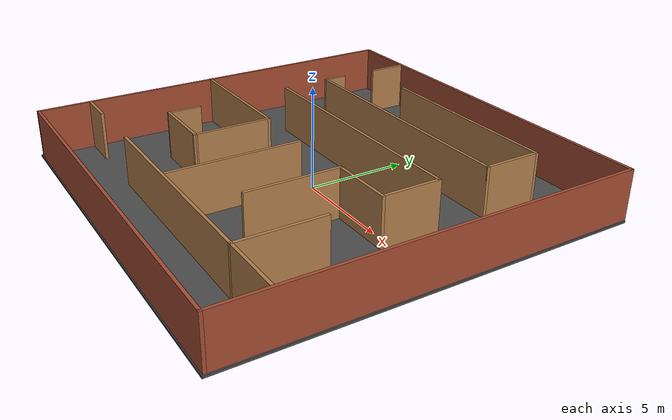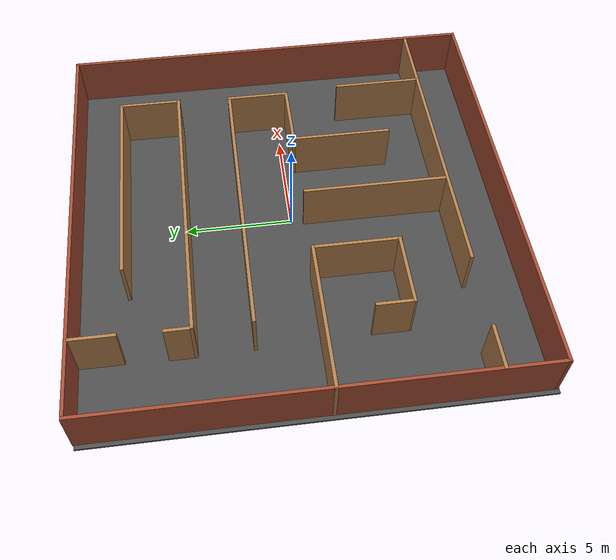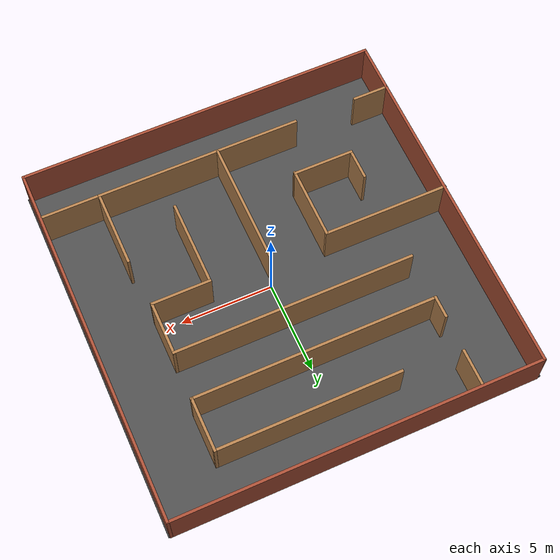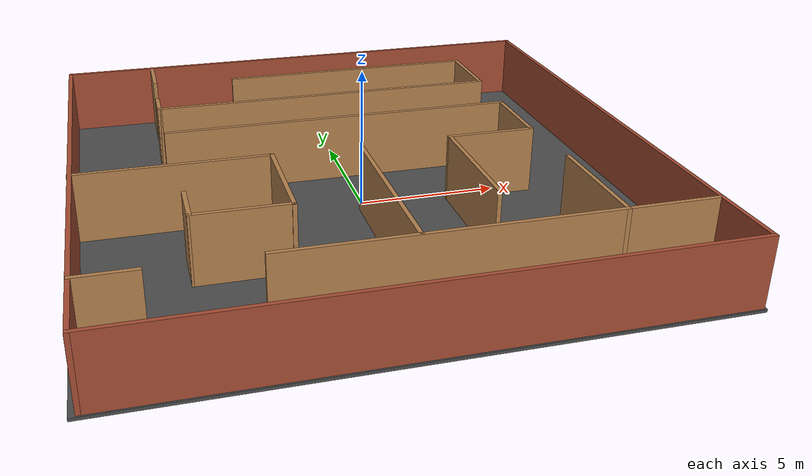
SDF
<sdf version="1.7">
 <world name="default">
  <light name="sun" type="directional">
   <pose>0 0 10 0 -0 0</pose>
   <diffuse>0.8 0.8 0.8 1</diffuse>
   <specular>0.2 0.2 0.2 1</specular>
   <attenuation>
    <range>1000</range>
    <constant>0.9</constant>
    <linear>0.01</linear>
    <quadratic>0.001</quadratic>
   </attenuation>
   <direction>-0.5 0.1 -0.9</direction>
   <spot><inner_angle>0</inner_angle><outer_angle>0</outer_angle><falloff>0</falloff></spot>
  </light>
  <gravity>0 0 -9.8</gravity>
  <magnetic_field>6e-06 2.3e-05 -4.2e-05</magnetic_field>
  <atmosphere type="adiabatic"/>
  <physics type="ode">
   <max_step_size>0.001</max_step_size>
   <real_time_factor>1</real_time_factor>
   <real_time_update_rate>1000</real_time_update_rate>
  </physics>
  <scene><ambient>0.4 0.4 0.4 1</ambient><background>0.7 0.7 0.7 1</background><shadows>1</shadows></scene>
  <spherical_coordinates>
   <surface_model>EARTH_WGS84</surface_model>
   <latitude_deg>0</latitude_deg>
   <longitude_deg>0</longitude_deg>
   <elevation>0</elevation>
   <heading_deg>0</heading_deg>
  </spherical_coordinates>
  <model name="Labyrinth_Arena">
   <pose>-0.192558 0.045 0 0 -0 0</pose>
   <link name="Wall_15">
    <collision name="Wall_15_Collision">
     <geometry><box><size>2 0.15 2.5</size></box></geometry>
     <pose>0 0 1.25 0 -0 0</pose>
    </collision>
    <visual name="Wall_15_Visual">
     <pose>0 0 1.25 0 -0 0</pose>
     <geometry><box><size>2 0.15 2.5</size></box></geometry>
     <material>
      <script><uri>file://media/materials/scripts/gazebo.material</uri><name>Gazebo/Wood</name></script>
      <ambient>1 1 1 1</ambient>
     </material>
     <meta><layer>0</layer></meta>
    </visual>
    <pose>-6.44044 8.883 0 0 -0 -1.5708</pose>
   </link>
   <link name="Wall_17">
    <collision name="Wall_17_Collision">
     <geometry><box><size>1.25 0.15 2.5</size></box></geometry>
     <pose>0 0 1.25 0 -0 0</pose>
    </collision>
    <visual name="Wall_17_Visual">
     <pose>0 0 1.25 0 -0 0</pose>
     <geometry><box><size>1.25 0.15 2.5</size></box></geometry>
     <material>
      <script><uri>file://media/materials/scripts/gazebo.material</uri><name>Gazebo/Wood</name></script>
      <ambient>1 1 1 1</ambient>
     </material>
     <meta><layer>0</layer></meta>
    </visual>
    <pose>-6.49444 5.406 0 0 -0 -1.5708</pose>
   </link>
   <link name="Wall_18">
    <collision name="Wall_18_Collision">
     <geometry><box><size>13.1616 0.15 2.5</size></box></geometry>
     <pose>0 0 1.25 0 -0 0</pose>
    </collision>
    <visual name="Wall_18_Visual">
     <pose>0 0 1.25 0 -0 0</pose>
     <geometry><box><size>13.1616 0.15 2.5</size></box></geometry>
     <material>
      <script><uri>file://media/materials/scripts/gazebo.material</uri><name>Gazebo/Wood</name></script>
      <ambient>1 1 1 1</ambient>
     </material>
     <meta><layer>0</layer></meta>
    </visual>
    <pose>0.011295 4.856 0 0 -0 0</pose>
   </link>
   <link name="Wall_19">
    <collision name="Wall_19_Collision">
     <geometry><box><size>2.964 0.15 2.5</size></box></geometry>
     <pose>0 0 1.25 0 -0 0</pose>
    </collision>
    <visual name="Wall_19_Visual">
     <pose>0 0 1.25 0 -0 0</pose>
     <geometry><box><size>2.964 0.15 2.5</size></box></geometry>
     <material>
      <script><uri>file://media/materials/scripts/gazebo.material</uri><name>Gazebo/Wood</name></script>
      <ambient>1 1 1 1</ambient>
     </material>
     <meta><layer>0</layer></meta>
    </visual>
    <pose>6.51703 6.263 0 0 -0 1.5708</pose>
   </link>
   <link name="Wall_20">
    <collision name="Wall_20_Collision">
     <geometry><box><size>9.91162 0.15 2.5</size></box></geometry>
     <pose>0 0 1.25 0 -0 0</pose>
    </collision>
    <visual name="Wall_20_Visual">
     <pose>0 0 1.25 0 -0 0</pose>
     <geometry><box><size>9.91162 0.15 2.5</size></box></geometry>
     <material>
      <script><uri>file://media/materials/scripts/gazebo.material</uri><name>Gazebo/Wood</name></script>
      <ambient>1 1 1 1</ambient>
     </material>
     <meta><layer>0</layer></meta>
    </visual>
    <pose>1.63629 7.67 0 0 -0 3.14159</pose>
   </link>
   <link name="Wall_22">
    <collision name="Wall_22_Collision">
     <geometry><box><size>13 0.15 2.5</size></box></geometry>
     <pose>0 0 1.25 0 -0 0</pose>
    </collision>
    <visual name="Wall_22_Visual">
     <pose>0 0 1.25 0 -0 0</pose>
     <geometry><box><size>13 0.15 2.5</size></box></geometry>
     <material>
      <script><uri>file://media/materials/scripts/gazebo.material</uri><name>Gazebo/Wood</name></script>
      <ambient>1 1 1 1</ambient>
     </material>
     <meta><layer>0</layer></meta>
    </visual>
    <pose>-0.015442 2.318 0 0 -0 0</pose>
   </link>
   <link name="Wall_23">
    <collision name="Wall_23_Collision">
     <geometry><box><size>3 0.15 2.5</size></box></geometry>
     <pose>0 0 1.25 0 -0 0</pose>
    </collision>
    <visual name="Wall_23_Visual">
     <pose>0 0 1.25 0 -0 0</pose>
     <geometry><box><size>3 0.15 2.5</size></box></geometry>
     <material>
      <script><uri>file://media/materials/scripts/gazebo.material</uri><name>Gazebo/Wood</name></script>
      <ambient>1 1 1 1</ambient>
     </material>
     <meta><layer>0</layer></meta>
    </visual>
    <pose>6.40956 0.893 0 0 -0 -1.5708</pose>
   </link>
   <link name="Wall_24">
    <collision name="Wall_24_Collision">
     <geometry><box><size>3.25 0.15 2.5</size></box></geometry>
     <pose>0 0 1.25 0 -0 0</pose>
    </collision>
    <visual name="Wall_24_Visual">
     <pose>0 0 1.25 0 -0 0</pose>
     <geometry><box><size>3.25 0.15 2.5</size></box></geometry>
     <material>
      <script><uri>file://media/materials/scripts/gazebo.material</uri><name>Gazebo/Wood</name></script>
      <ambient>1 1 1 1</ambient>
     </material>
     <meta><layer>0</layer></meta>
    </visual>
    <pose>4.85956 -0.532 0 0 -0 3.14159</pose>
   </link>
   <link name="Wall_25">
    <collision name="Wall_25_Collision">
     <geometry><box><size>4.75 0.15 2.5</size></box></geometry>
     <pose>0 0 1.25 0 -0 0</pose>
    </collision>
    <visual name="Wall_25_Visual">
     <pose>0 0 1.25 0 -0 0</pose>
     <geometry><box><size>4.75 0.15 2.5</size></box></geometry>
     <material>
      <script><uri>file://media/materials/scripts/gazebo.material</uri><name>Gazebo/Wood</name></script>
      <ambient>1 1 1 1</ambient>
     </material>
     <meta><layer>0</layer></meta>
    </visual>
    <pose>3.30956 -2.832 0 0 -0 -1.5708</pose>
   </link>
   <link name="Wall_27">
    <collision name="Wall_27_Collision">
     <geometry><box><size>4.25035 0.15 2.5</size></box></geometry>
     <pose>0 0 1.25 0 -0 0</pose>
    </collision>
    <visual name="Wall_27_Visual">
     <pose>0 0 1.25 0 -0 0</pose>
     <geometry><box><size>4.25035 0.15 2.5</size></box></geometry>
     <material>
      <script><uri>file://media/materials/scripts/gazebo.material</uri><name>Gazebo/Wood</name></script>
      <ambient>1 1 1 1</ambient>
     </material>
     <meta><layer>0</layer></meta>
    </visual>
    <pose>6.61456 -5.26 0 0 -0 -1.5708</pose>
   </link>
   <link name="Wall_28">
    <collision name="Wall_28_Collision">
     <geometry><box><size>11.1965 0.15 2.5</size></box></geometry>
     <pose>0 0 1.25 0 -0 0</pose>
    </collision>
    <visual name="Wall_28_Visual">
     <pose>0 0 1.25 0 -0 0</pose>
     <geometry><box><size>11.1965 0.15 2.5</size></box></geometry>
     <material>
      <script><uri>file://media/materials/scripts/gazebo.material</uri><name>Gazebo/Wood</name></script>
      <ambient>1 1 1 1</ambient>
     </material>
     <meta><layer>0</layer></meta>
    </visual>
    <pose>1.09106 -7.31 0 0 -0 3.14159</pose>
   </link>
   <link name="Wall_30">
    <collision name="Wall_30_Collision">
     <geometry><box><size>3.25 0.15 2.5</size></box></geometry>
     <pose>0 0 1.25 0 -0 0</pose>
    </collision>
    <visual name="Wall_30_Visual">
     <pose>0 0 1.25 0 -0 0</pose>
     <geometry><box><size>3.25 0.15 2.5</size></box></geometry>
     <material>
      <script><uri>file://media/materials/scripts/gazebo.material</uri><name>Gazebo/Wood</name></script>
      <ambient>1 1 1 1</ambient>
     </material>
     <meta><layer>0</layer></meta>
    </visual>
    <pose>8.16456 -7.31 0 0 -0 3.14159</pose>
   </link>
   <link name="Wall_32">
    <collision name="Wall_32_Collision">
     <geometry><box><size>2 0.15 2.5</size></box></geometry>
     <pose>0 0 1.25 0 -0 0</pose>
    </collision>
    <visual name="Wall_32_Visual">
     <pose>0 0 1.25 0 -0 0</pose>
     <geometry><box><size>2 0.15 2.5</size></box></geometry>
     <material>
      <script><uri>file://media/materials/scripts/gazebo.material</uri><name>Gazebo/Wood</name></script>
      <ambient>1 1 1 1</ambient>
     </material>
     <meta><layer>0</layer></meta>
    </visual>
    <pose>-8.85044 -7.313 0 0 -0 0</pose>
   </link>
   <link name="Wall_34">
    <collision name="Wall_34_Collision">
     <geometry><box><size>6.8491 0.15 2.5</size></box></geometry>
     <pose>0 0 1.25 0 -0 0</pose>
    </collision>
    <visual name="Wall_34_Visual">
     <pose>0 0 1.25 0 -0 0</pose>
     <geometry><box><size>6.8491 0.15 2.5</size></box></geometry>
     <material>
      <script><uri>file://media/materials/scripts/gazebo.material</uri><name>Gazebo/Wood</name></script>
      <ambient>1 1 1 1</ambient>
     </material>
     <meta><layer>0</layer></meta>
    </visual>
    <pose>-6.46195 -0.573594 0 0 -0 -0.000774</pose>
   </link>
   <link name="Wall_35">
    <collision name="Wall_35_Collision">
     <geometry><box><size>4 0.15 2.5</size></box></geometry>
     <pose>0 0 1.25 0 -0 0</pose>
    </collision>
    <visual name="Wall_35_Visual">
     <pose>0 0 1.25 0 -0 0</pose>
     <geometry><box><size>4 0.15 2.5</size></box></geometry>
     <material>
      <script><uri>file://media/materials/scripts/gazebo.material</uri><name>Gazebo/Wood</name></script>
      <ambient>1 1 1 1</ambient>
     </material>
     <meta><layer>0</layer></meta>
    </visual>
    <pose>-3.11246 -2.53637 0 0 -0 -1.5708</pose>
   </link>
   <link name="Wall_36">
    <collision name="Wall_36_Collision">
     <geometry><box><size>3.34898 0.15 2.5</size></box></geometry>
     <pose>0 0 1.25 0 -0 0</pose>
    </collision>
    <visual name="Wall_36_Visual">
     <pose>0 0 1.25 0 -0 0</pose>
     <geometry><box><size>3.34898 0.15 2.5</size></box></geometry>
     <material>
      <script><uri>file://media/materials/scripts/gazebo.material</uri><name>Gazebo/Wood</name></script>
      <ambient>1 1 1 1</ambient>
     </material>
     <meta><layer>0</layer></meta>
    </visual>
    <pose>-4.71195 -4.42359 0 0 -0 3.13997</pose>
   </link>
   <link name="Wall_37">
    <collision name="Wall_37_Collision">
     <geometry><box><size>1.75 0.15 2.5</size></box></geometry>
     <pose>0 0 1.25 0 -0 0</pose>
    </collision>
    <visual name="Wall_37_Visual">
     <pose>0 0 1.25 0 -0 0</pose>
     <geometry><box><size>1.75 0.15 2.5</size></box></geometry>
     <material>
      <script><uri>file://media/materials/scripts/gazebo.material</uri><name>Gazebo/Wood</name></script>
      <ambient>1 1 1 1</ambient>
     </material>
     <meta><layer>0</layer></meta>
    </visual>
    <pose>-6.31144 -3.621 0 0 -0 1.5708</pose>
   </link>
   <link name="Wall_39">
    <collision name="Wall_39_Collision">
     <geometry><box><size>6.75 0.15 2.5</size></box></geometry>
     <pose>0 0 1.25 0 -0 0</pose>
    </collision>
    <visual name="Wall_39_Visual">
     <pose>0 0 1.25 0 -0 0</pose>
     <geometry><box><size>6.75 0.15 2.5</size></box></geometry>
     <material>
      <script><uri>file://media/materials/scripts/gazebo.material</uri><name>Gazebo/Wood</name></script>
      <ambient>1 1 1 1</ambient>
     </material>
     <meta><layer>0</layer></meta>
    </visual>
    <pose>0.033533 -3.9605 0 0 -0 -1.5708</pose>
   </link>
   <link name="Wall_4">
    <collision name="Wall_4_Collision">
     <geometry><box><size>19.75 0.15 2.5</size></box></geometry>
     <pose>0 0 1.25 0 -0 0</pose>
    </collision>
    <visual name="Wall_4_Visual">
     <pose>0 0 1.25 0 -0 0</pose>
     <geometry><box><size>19.75 0.15 2.5</size></box></geometry>
     <material>
      <script><uri>file://media/materials/scripts/gazebo.material</uri><name>Gazebo/Bricks</name></script>
      <ambient>1 1 1 1</ambient>
     </material>
     <meta><layer>0</layer></meta>
    </visual>
    <pose>0.011558 -9.925 0 0 -0 3.14159</pose>
   </link>
   <link name="Wall_5">
    <collision name="Wall_5_Collision">
     <geometry><box><size>20 0.15 2.5</size></box></geometry>
     <pose>0 0 1.25 0 -0 0</pose>
    </collision>
    <visual name="Wall_5_Visual">
     <pose>0 0 1.25 0 -0 0</pose>
     <geometry><box><size>20 0.15 2.5</size></box></geometry>
     <material>
      <script><uri>file://media/materials/scripts/gazebo.material</uri><name>Gazebo/Bricks</name></script>
      <ambient>1 1 1 1</ambient>
     </material>
     <meta><layer>0</layer></meta>
    </visual>
    <pose>-9.78844 -0 0 0 -0 1.5708</pose>
   </link>
   <link name="Wall_6">
    <collision name="Wall_6_Collision">
     <geometry><box><size>19.75 0.15 2.5</size></box></geometry>
     <pose>0 0 1.25 0 -0 0</pose>
    </collision>
    <visual name="Wall_6_Visual">
     <pose>0 0 1.25 0 -0 0</pose>
     <geometry><box><size>19.75 0.15 2.5</size></box></geometry>
     <material>
      <script><uri>file://media/materials/scripts/gazebo.material</uri><name>Gazebo/Bricks</name></script>
      <ambient>1 1 1 1</ambient>
     </material>
     <meta><layer>0</layer></meta>
    </visual>
    <pose>0.011558 9.925 0 0 -0 0</pose>
   </link>
   <link name="Wall_8">
    <collision name="Wall_8_Collision">
     <geometry><box><size>20 0.15 2.5</size></box></geometry>
     <pose>0 0 1.25 0 -0 0</pose>
    </collision>
    <visual name="Wall_8_Visual">
     <pose>0 0 1.25 0 -0 0</pose>
     <geometry><box><size>20 0.15 2.5</size></box></geometry>
     <material>
      <script><uri>file://media/materials/scripts/gazebo.material</uri><name>Gazebo/Bricks</name></script>
      <ambient>1 1 1 1</ambient>
     </material>
     <meta><layer>0</layer></meta>
    </visual>
    <pose>9.81156 -0 0 0 -0 -1.5708</pose>
   </link>
   <static>1</static>
  </model>
  <model name="asphalt_plane">
   <static>1</static>
   <link name="link">
    <collision name="collision"><geometry><box><size>20 20 0.1</size></box></geometry></collision>
    <visual name="visual">
     <cast_shadows>0</cast_shadows>
     <geometry><box><size>20 20 0.1</size></box></geometry>
     <material>
      <script>
       <uri>model://asphalt_plane/materials/scripts</uri>
       <uri>model://asphalt_plane/materials/textures</uri>
       <name>vrc/asphalt</name>
      </script>
     </material>
    </visual>
   </link>
   <pose>-0.244125 -0.006661 0 0 -0 0</pose>
  </model>
 </world>
</sdf>
